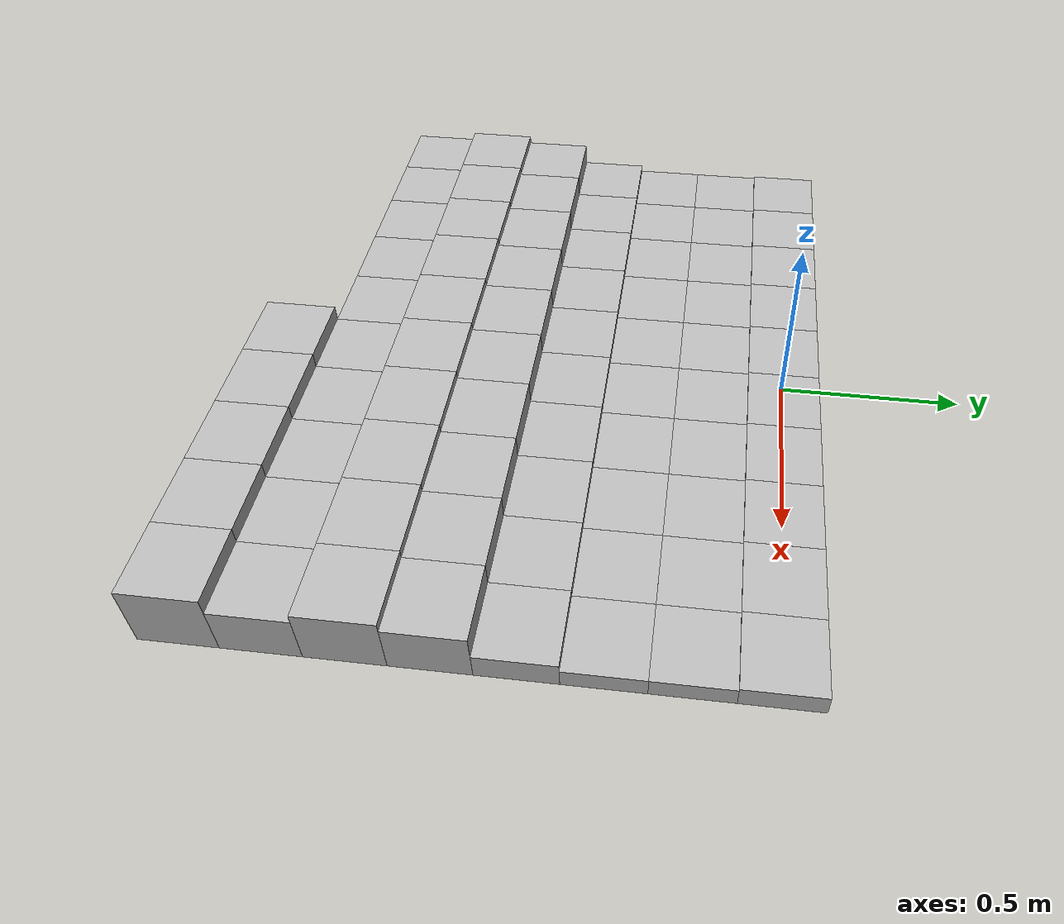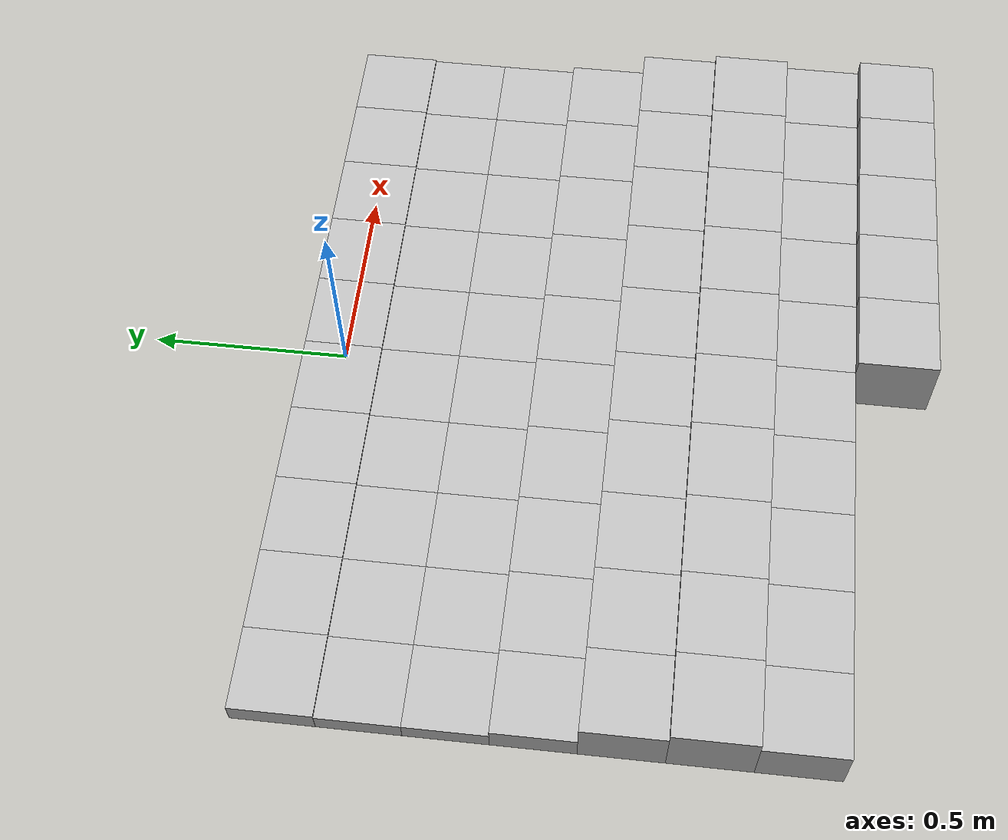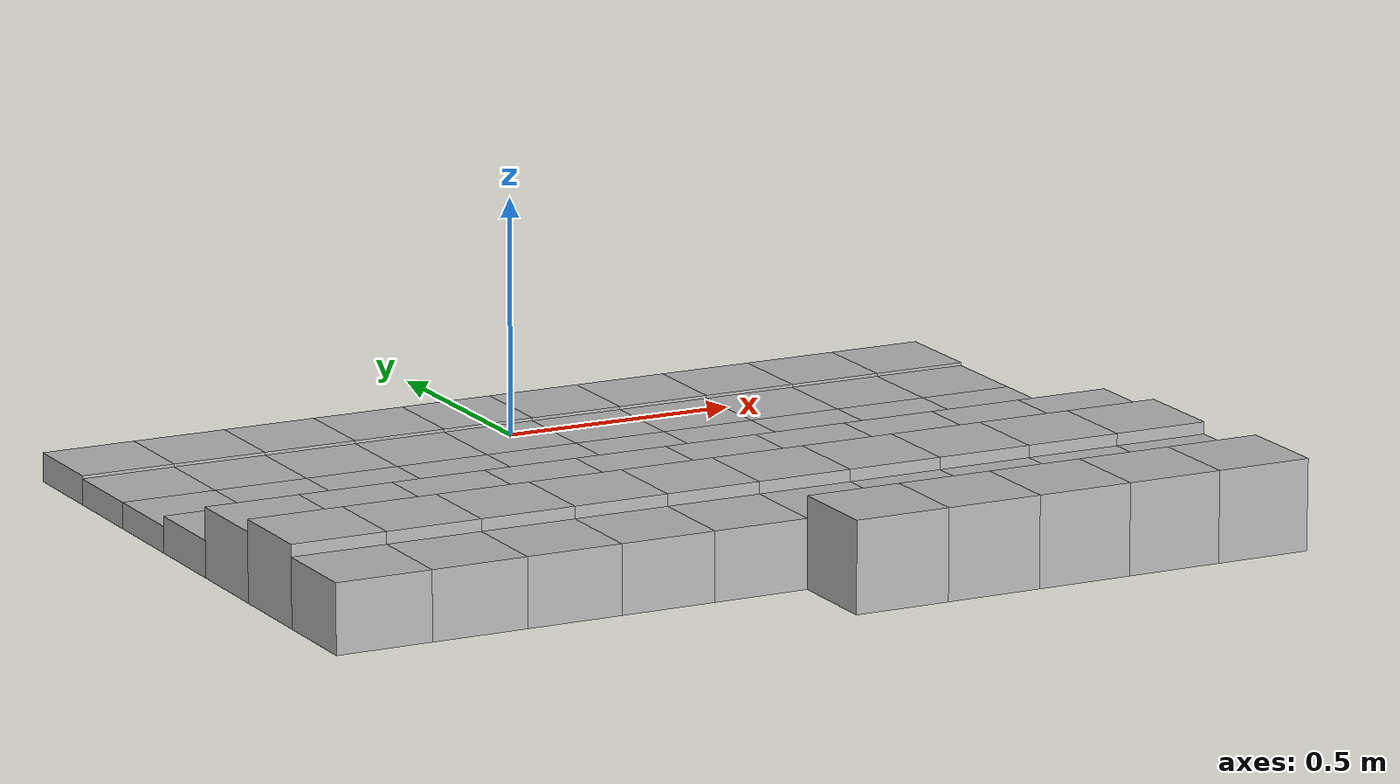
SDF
<sdf version="1.6">
 <model name="Terrain">
  <static>true</static>
  <link name="box_0_0">
   <pose>-0.9 0.0 0.0302745146225 0 0 0</pose>
   <inertial>
    <mass>1.0</mass>
    <inertia><ixx>0.0</ixx><ixy>0.0</ixy><ixz>0.0</ixz><iyy>0.0</iyy><iyz>0.0</iyz><izz>0.0</izz></inertia>
   </inertial>
   <collision name="collision"><geometry><box><size>0.2 0.2 0.060549029245</size></box></geometry></collision>
   <visual name="visual"><geometry><box><size>0.2 0.2 0.060549029245</size></box></geometry></visual>
  </link>
  <link name="box_0_1">
   <pose>-0.7 0.0 0.0302745146225 0 0 0</pose>
   <inertial>
    <mass>1.0</mass>
    <inertia><ixx>0.0</ixx><ixy>0.0</ixy><ixz>0.0</ixz><iyy>0.0</iyy><iyz>0.0</iyz><izz>0.0</izz></inertia>
   </inertial>
   <collision name="collision"><geometry><box><size>0.2 0.2 0.060549029245</size></box></geometry></collision>
   <visual name="visual"><geometry><box><size>0.2 0.2 0.060549029245</size></box></geometry></visual>
  </link>
  <link name="box_0_2">
   <pose>-0.5 0.0 0.0302745146225 0 0 0</pose>
   <inertial>
    <mass>1.0</mass>
    <inertia><ixx>0.0</ixx><ixy>0.0</ixy><ixz>0.0</ixz><iyy>0.0</iyy><iyz>0.0</iyz><izz>0.0</izz></inertia>
   </inertial>
   <collision name="collision"><geometry><box><size>0.2 0.2 0.060549029245</size></box></geometry></collision>
   <visual name="visual"><geometry><box><size>0.2 0.2 0.060549029245</size></box></geometry></visual>
  </link>
  <link name="box_0_3">
   <pose>-0.3 0.0 0.0302745146225 0 0 0</pose>
   <inertial>
    <mass>1.0</mass>
    <inertia><ixx>0.0</ixx><ixy>0.0</ixy><ixz>0.0</ixz><iyy>0.0</iyy><iyz>0.0</iyz><izz>0.0</izz></inertia>
   </inertial>
   <collision name="collision"><geometry><box><size>0.2 0.2 0.060549029245</size></box></geometry></collision>
   <visual name="visual"><geometry><box><size>0.2 0.2 0.060549029245</size></box></geometry></visual>
  </link>
  <link name="box_0_4">
   <pose>-0.1 0.0 0.0302745146225 0 0 0</pose>
   <inertial>
    <mass>1.0</mass>
    <inertia><ixx>0.0</ixx><ixy>0.0</ixy><ixz>0.0</ixz><iyy>0.0</iyy><iyz>0.0</iyz><izz>0.0</izz></inertia>
   </inertial>
   <collision name="collision"><geometry><box><size>0.2 0.2 0.060549029245</size></box></geometry></collision>
   <visual name="visual"><geometry><box><size>0.2 0.2 0.060549029245</size></box></geometry></visual>
  </link>
  <link name="box_0_5">
   <pose>0.1 0.0 0.0302745146225 0 0 0</pose>
   <inertial>
    <mass>1.0</mass>
    <inertia><ixx>0.0</ixx><ixy>0.0</ixy><ixz>0.0</ixz><iyy>0.0</iyy><iyz>0.0</iyz><izz>0.0</izz></inertia>
   </inertial>
   <collision name="collision"><geometry><box><size>0.2 0.2 0.060549029245</size></box></geometry></collision>
   <visual name="visual"><geometry><box><size>0.2 0.2 0.060549029245</size></box></geometry></visual>
  </link>
  <link name="box_0_6">
   <pose>0.3 0.0 0.0302745146225 0 0 0</pose>
   <inertial>
    <mass>1.0</mass>
    <inertia><ixx>0.0</ixx><ixy>0.0</ixy><ixz>0.0</ixz><iyy>0.0</iyy><iyz>0.0</iyz><izz>0.0</izz></inertia>
   </inertial>
   <collision name="collision"><geometry><box><size>0.2 0.2 0.060549029245</size></box></geometry></collision>
   <visual name="visual"><geometry><box><size>0.2 0.2 0.060549029245</size></box></geometry></visual>
  </link>
  <link name="box_0_7">
   <pose>0.5 0.0 0.0302745146225 0 0 0</pose>
   <inertial>
    <mass>1.0</mass>
    <inertia><ixx>0.0</ixx><ixy>0.0</ixy><ixz>0.0</ixz><iyy>0.0</iyy><iyz>0.0</iyz><izz>0.0</izz></inertia>
   </inertial>
   <collision name="collision"><geometry><box><size>0.2 0.2 0.060549029245</size></box></geometry></collision>
   <visual name="visual"><geometry><box><size>0.2 0.2 0.060549029245</size></box></geometry></visual>
  </link>
  <link name="box_0_8">
   <pose>0.7 0.0 0.0302745146225 0 0 0</pose>
   <inertial>
    <mass>1.0</mass>
    <inertia><ixx>0.0</ixx><ixy>0.0</ixy><ixz>0.0</ixz><iyy>0.0</iyy><iyz>0.0</iyz><izz>0.0</izz></inertia>
   </inertial>
   <collision name="collision"><geometry><box><size>0.2 0.2 0.060549029245</size></box></geometry></collision>
   <visual name="visual"><geometry><box><size>0.2 0.2 0.060549029245</size></box></geometry></visual>
  </link>
  <link name="box_0_9">
   <pose>0.9 0.0 0.0302745146225 0 0 0</pose>
   <inertial>
    <mass>1.0</mass>
    <inertia><ixx>0.0</ixx><ixy>0.0</ixy><ixz>0.0</ixz><iyy>0.0</iyy><iyz>0.0</iyz><izz>0.0</izz></inertia>
   </inertial>
   <collision name="collision"><geometry><box><size>0.2 0.2 0.060549029245</size></box></geometry></collision>
   <visual name="visual"><geometry><box><size>0.2 0.2 0.060549029245</size></box></geometry></visual>
  </link>
  <link name="box_1_0">
   <pose>-0.9 -0.2 0.0271384710734 0 0 0</pose>
   <inertial>
    <mass>1.0</mass>
    <inertia><ixx>0.0</ixx><ixy>0.0</ixy><ixz>0.0</ixz><iyy>0.0</iyy><iyz>0.0</iyz><izz>0.0</izz></inertia>
   </inertial>
   <collision name="collision"><geometry><box><size>0.2 0.2 0.0542769421468</size></box></geometry></collision>
   <visual name="visual"><geometry><box><size>0.2 0.2 0.0542769421468</size></box></geometry></visual>
  </link>
  <link name="box_1_1">
   <pose>-0.7 -0.2 0.0271384710734 0 0 0</pose>
   <inertial>
    <mass>1.0</mass>
    <inertia><ixx>0.0</ixx><ixy>0.0</ixy><ixz>0.0</ixz><iyy>0.0</iyy><iyz>0.0</iyz><izz>0.0</izz></inertia>
   </inertial>
   <collision name="collision"><geometry><box><size>0.2 0.2 0.0542769421468</size></box></geometry></collision>
   <visual name="visual"><geometry><box><size>0.2 0.2 0.0542769421468</size></box></geometry></visual>
  </link>
  <link name="box_1_2">
   <pose>-0.5 -0.2 0.0271384710734 0 0 0</pose>
   <inertial>
    <mass>1.0</mass>
    <inertia><ixx>0.0</ixx><ixy>0.0</ixy><ixz>0.0</ixz><iyy>0.0</iyy><iyz>0.0</iyz><izz>0.0</izz></inertia>
   </inertial>
   <collision name="collision"><geometry><box><size>0.2 0.2 0.0542769421468</size></box></geometry></collision>
   <visual name="visual"><geometry><box><size>0.2 0.2 0.0542769421468</size></box></geometry></visual>
  </link>
  <link name="box_1_3">
   <pose>-0.3 -0.2 0.0271384710734 0 0 0</pose>
   <inertial>
    <mass>1.0</mass>
    <inertia><ixx>0.0</ixx><ixy>0.0</ixy><ixz>0.0</ixz><iyy>0.0</iyy><iyz>0.0</iyz><izz>0.0</izz></inertia>
   </inertial>
   <collision name="collision"><geometry><box><size>0.2 0.2 0.0542769421468</size></box></geometry></collision>
   <visual name="visual"><geometry><box><size>0.2 0.2 0.0542769421468</size></box></geometry></visual>
  </link>
  <link name="box_1_4">
   <pose>-0.1 -0.2 0.0271384710734 0 0 0</pose>
   <inertial>
    <mass>1.0</mass>
    <inertia><ixx>0.0</ixx><ixy>0.0</ixy><ixz>0.0</ixz><iyy>0.0</iyy><iyz>0.0</iyz><izz>0.0</izz></inertia>
   </inertial>
   <collision name="collision"><geometry><box><size>0.2 0.2 0.0542769421468</size></box></geometry></collision>
   <visual name="visual"><geometry><box><size>0.2 0.2 0.0542769421468</size></box></geometry></visual>
  </link>
  <link name="box_1_5">
   <pose>0.1 -0.2 0.0271384710734 0 0 0</pose>
   <inertial>
    <mass>1.0</mass>
    <inertia><ixx>0.0</ixx><ixy>0.0</ixy><ixz>0.0</ixz><iyy>0.0</iyy><iyz>0.0</iyz><izz>0.0</izz></inertia>
   </inertial>
   <collision name="collision"><geometry><box><size>0.2 0.2 0.0542769421468</size></box></geometry></collision>
   <visual name="visual"><geometry><box><size>0.2 0.2 0.0542769421468</size></box></geometry></visual>
  </link>
  <link name="box_1_6">
   <pose>0.3 -0.2 0.0271384710734 0 0 0</pose>
   <inertial>
    <mass>1.0</mass>
    <inertia><ixx>0.0</ixx><ixy>0.0</ixy><ixz>0.0</ixz><iyy>0.0</iyy><iyz>0.0</iyz><izz>0.0</izz></inertia>
   </inertial>
   <collision name="collision"><geometry><box><size>0.2 0.2 0.0542769421468</size></box></geometry></collision>
   <visual name="visual"><geometry><box><size>0.2 0.2 0.0542769421468</size></box></geometry></visual>
  </link>
  <link name="box_1_7">
   <pose>0.5 -0.2 0.0271384710734 0 0 0</pose>
   <inertial>
    <mass>1.0</mass>
    <inertia><ixx>0.0</ixx><ixy>0.0</ixy><ixz>0.0</ixz><iyy>0.0</iyy><iyz>0.0</iyz><izz>0.0</izz></inertia>
   </inertial>
   <collision name="collision"><geometry><box><size>0.2 0.2 0.0542769421468</size></box></geometry></collision>
   <visual name="visual"><geometry><box><size>0.2 0.2 0.0542769421468</size></box></geometry></visual>
  </link>
  <link name="box_1_8">
   <pose>0.7 -0.2 0.0271384710734 0 0 0</pose>
   <inertial>
    <mass>1.0</mass>
    <inertia><ixx>0.0</ixx><ixy>0.0</ixy><ixz>0.0</ixz><iyy>0.0</iyy><iyz>0.0</iyz><izz>0.0</izz></inertia>
   </inertial>
   <collision name="collision"><geometry><box><size>0.2 0.2 0.0542769421468</size></box></geometry></collision>
   <visual name="visual"><geometry><box><size>0.2 0.2 0.0542769421468</size></box></geometry></visual>
  </link>
  <link name="box_1_9">
   <pose>0.9 -0.2 0.0271384710734 0 0 0</pose>
   <inertial>
    <mass>1.0</mass>
    <inertia><ixx>0.0</ixx><ixy>0.0</ixy><ixz>0.0</ixz><iyy>0.0</iyy><iyz>0.0</iyz><izz>0.0</izz></inertia>
   </inertial>
   <collision name="collision"><geometry><box><size>0.2 0.2 0.0542769421468</size></box></geometry></collision>
   <visual name="visual"><geometry><box><size>0.2 0.2 0.0542769421468</size></box></geometry></visual>
  </link>
  <link name="box_2_0">
   <pose>-0.9 -0.4 0.027221701947 0 0 0</pose>
   <inertial>
    <mass>1.0</mass>
    <inertia><ixx>0.0</ixx><ixy>0.0</ixy><ixz>0.0</ixz><iyy>0.0</iyy><iyz>0.0</iyz><izz>0.0</izz></inertia>
   </inertial>
   <collision name="collision"><geometry><box><size>0.2 0.2 0.0544434038941</size></box></geometry></collision>
   <visual name="visual"><geometry><box><size>0.2 0.2 0.0544434038941</size></box></geometry></visual>
  </link>
  <link name="box_2_1">
   <pose>-0.7 -0.4 0.027221701947 0 0 0</pose>
   <inertial>
    <mass>1.0</mass>
    <inertia><ixx>0.0</ixx><ixy>0.0</ixy><ixz>0.0</ixz><iyy>0.0</iyy><iyz>0.0</iyz><izz>0.0</izz></inertia>
   </inertial>
   <collision name="collision"><geometry><box><size>0.2 0.2 0.0544434038941</size></box></geometry></collision>
   <visual name="visual"><geometry><box><size>0.2 0.2 0.0544434038941</size></box></geometry></visual>
  </link>
  <link name="box_2_2">
   <pose>-0.5 -0.4 0.027221701947 0 0 0</pose>
   <inertial>
    <mass>1.0</mass>
    <inertia><ixx>0.0</ixx><ixy>0.0</ixy><ixz>0.0</ixz><iyy>0.0</iyy><iyz>0.0</iyz><izz>0.0</izz></inertia>
   </inertial>
   <collision name="collision"><geometry><box><size>0.2 0.2 0.0544434038941</size></box></geometry></collision>
   <visual name="visual"><geometry><box><size>0.2 0.2 0.0544434038941</size></box></geometry></visual>
  </link>
  <link name="box_2_3">
   <pose>-0.3 -0.4 0.027221701947 0 0 0</pose>
   <inertial>
    <mass>1.0</mass>
    <inertia><ixx>0.0</ixx><ixy>0.0</ixy><ixz>0.0</ixz><iyy>0.0</iyy><iyz>0.0</iyz><izz>0.0</izz></inertia>
   </inertial>
   <collision name="collision"><geometry><box><size>0.2 0.2 0.0544434038941</size></box></geometry></collision>
   <visual name="visual"><geometry><box><size>0.2 0.2 0.0544434038941</size></box></geometry></visual>
  </link>
  <link name="box_2_4">
   <pose>-0.1 -0.4 0.027221701947 0 0 0</pose>
   <inertial>
    <mass>1.0</mass>
    <inertia><ixx>0.0</ixx><ixy>0.0</ixy><ixz>0.0</ixz><iyy>0.0</iyy><iyz>0.0</iyz><izz>0.0</izz></inertia>
   </inertial>
   <collision name="collision"><geometry><box><size>0.2 0.2 0.0544434038941</size></box></geometry></collision>
   <visual name="visual"><geometry><box><size>0.2 0.2 0.0544434038941</size></box></geometry></visual>
  </link>
  <link name="box_2_5">
   <pose>0.1 -0.4 0.027221701947 0 0 0</pose>
   <inertial>
    <mass>1.0</mass>
    <inertia><ixx>0.0</ixx><ixy>0.0</ixy><ixz>0.0</ixz><iyy>0.0</iyy><iyz>0.0</iyz><izz>0.0</izz></inertia>
   </inertial>
   <collision name="collision"><geometry><box><size>0.2 0.2 0.0544434038941</size></box></geometry></collision>
   <visual name="visual"><geometry><box><size>0.2 0.2 0.0544434038941</size></box></geometry></visual>
  </link>
  <link name="box_2_6">
   <pose>0.3 -0.4 0.027221701947 0 0 0</pose>
   <inertial>
    <mass>1.0</mass>
    <inertia><ixx>0.0</ixx><ixy>0.0</ixy><ixz>0.0</ixz><iyy>0.0</iyy><iyz>0.0</iyz><izz>0.0</izz></inertia>
   </inertial>
   <collision name="collision"><geometry><box><size>0.2 0.2 0.0544434038941</size></box></geometry></collision>
   <visual name="visual"><geometry><box><size>0.2 0.2 0.0544434038941</size></box></geometry></visual>
  </link>
  <link name="box_2_7">
   <pose>0.5 -0.4 0.027221701947 0 0 0</pose>
   <inertial>
    <mass>1.0</mass>
    <inertia><ixx>0.0</ixx><ixy>0.0</ixy><ixz>0.0</ixz><iyy>0.0</iyy><iyz>0.0</iyz><izz>0.0</izz></inertia>
   </inertial>
   <collision name="collision"><geometry><box><size>0.2 0.2 0.0544434038941</size></box></geometry></collision>
   <visual name="visual"><geometry><box><size>0.2 0.2 0.0544434038941</size></box></geometry></visual>
  </link>
  <link name="box_2_8">
   <pose>0.7 -0.4 0.027221701947 0 0 0</pose>
   <inertial>
    <mass>1.0</mass>
    <inertia><ixx>0.0</ixx><ixy>0.0</ixy><ixz>0.0</ixz><iyy>0.0</iyy><iyz>0.0</iyz><izz>0.0</izz></inertia>
   </inertial>
   <collision name="collision"><geometry><box><size>0.2 0.2 0.0544434038941</size></box></geometry></collision>
   <visual name="visual"><geometry><box><size>0.2 0.2 0.0544434038941</size></box></geometry></visual>
  </link>
  <link name="box_2_9">
   <pose>0.9 -0.4 0.027221701947 0 0 0</pose>
   <inertial>
    <mass>1.0</mass>
    <inertia><ixx>0.0</ixx><ixy>0.0</ixy><ixz>0.0</ixz><iyy>0.0</iyy><iyz>0.0</iyz><izz>0.0</izz></inertia>
   </inertial>
   <collision name="collision"><geometry><box><size>0.2 0.2 0.0544434038941</size></box></geometry></collision>
   <visual name="visual"><geometry><box><size>0.2 0.2 0.0544434038941</size></box></geometry></visual>
  </link>
  <link name="box_3_0">
   <pose>-0.9 -0.6 0.0376582536334 0 0 0</pose>
   <inertial>
    <mass>1.0</mass>
    <inertia><ixx>0.0</ixx><ixy>0.0</ixy><ixz>0.0</ixz><iyy>0.0</iyy><iyz>0.0</iyz><izz>0.0</izz></inertia>
   </inertial>
   <collision name="collision"><geometry><box><size>0.2 0.2 0.0753165072667</size></box></geometry></collision>
   <visual name="visual"><geometry><box><size>0.2 0.2 0.0753165072667</size></box></geometry></visual>
  </link>
  <link name="box_3_1">
   <pose>-0.7 -0.6 0.0376582536334 0 0 0</pose>
   <inertial>
    <mass>1.0</mass>
    <inertia><ixx>0.0</ixx><ixy>0.0</ixy><ixz>0.0</ixz><iyy>0.0</iyy><iyz>0.0</iyz><izz>0.0</izz></inertia>
   </inertial>
   <collision name="collision"><geometry><box><size>0.2 0.2 0.0753165072667</size></box></geometry></collision>
   <visual name="visual"><geometry><box><size>0.2 0.2 0.0753165072667</size></box></geometry></visual>
  </link>
  <link name="box_3_2">
   <pose>-0.5 -0.6 0.0376582536334 0 0 0</pose>
   <inertial>
    <mass>1.0</mass>
    <inertia><ixx>0.0</ixx><ixy>0.0</ixy><ixz>0.0</ixz><iyy>0.0</iyy><iyz>0.0</iyz><izz>0.0</izz></inertia>
   </inertial>
   <collision name="collision"><geometry><box><size>0.2 0.2 0.0753165072667</size></box></geometry></collision>
   <visual name="visual"><geometry><box><size>0.2 0.2 0.0753165072667</size></box></geometry></visual>
  </link>
  <link name="box_3_3">
   <pose>-0.3 -0.6 0.0376582536334 0 0 0</pose>
   <inertial>
    <mass>1.0</mass>
    <inertia><ixx>0.0</ixx><ixy>0.0</ixy><ixz>0.0</ixz><iyy>0.0</iyy><iyz>0.0</iyz><izz>0.0</izz></inertia>
   </inertial>
   <collision name="collision"><geometry><box><size>0.2 0.2 0.0753165072667</size></box></geometry></collision>
   <visual name="visual"><geometry><box><size>0.2 0.2 0.0753165072667</size></box></geometry></visual>
  </link>
  <link name="box_3_4">
   <pose>-0.1 -0.6 0.0376582536334 0 0 0</pose>
   <inertial>
    <mass>1.0</mass>
    <inertia><ixx>0.0</ixx><ixy>0.0</ixy><ixz>0.0</ixz><iyy>0.0</iyy><iyz>0.0</iyz><izz>0.0</izz></inertia>
   </inertial>
   <collision name="collision"><geometry><box><size>0.2 0.2 0.0753165072667</size></box></geometry></collision>
   <visual name="visual"><geometry><box><size>0.2 0.2 0.0753165072667</size></box></geometry></visual>
  </link>
  <link name="box_3_5">
   <pose>0.1 -0.6 0.0376582536334 0 0 0</pose>
   <inertial>
    <mass>1.0</mass>
    <inertia><ixx>0.0</ixx><ixy>0.0</ixy><ixz>0.0</ixz><iyy>0.0</iyy><iyz>0.0</iyz><izz>0.0</izz></inertia>
   </inertial>
   <collision name="collision"><geometry><box><size>0.2 0.2 0.0753165072667</size></box></geometry></collision>
   <visual name="visual"><geometry><box><size>0.2 0.2 0.0753165072667</size></box></geometry></visual>
  </link>
  <link name="box_3_6">
   <pose>0.3 -0.6 0.0376582536334 0 0 0</pose>
   <inertial>
    <mass>1.0</mass>
    <inertia><ixx>0.0</ixx><ixy>0.0</ixy><ixz>0.0</ixz><iyy>0.0</iyy><iyz>0.0</iyz><izz>0.0</izz></inertia>
   </inertial>
   <collision name="collision"><geometry><box><size>0.2 0.2 0.0753165072667</size></box></geometry></collision>
   <visual name="visual"><geometry><box><size>0.2 0.2 0.0753165072667</size></box></geometry></visual>
  </link>
  <link name="box_3_7">
   <pose>0.5 -0.6 0.0376582536334 0 0 0</pose>
   <inertial>
    <mass>1.0</mass>
    <inertia><ixx>0.0</ixx><ixy>0.0</ixy><ixz>0.0</ixz><iyy>0.0</iyy><iyz>0.0</iyz><izz>0.0</izz></inertia>
   </inertial>
   <collision name="collision"><geometry><box><size>0.2 0.2 0.0753165072667</size></box></geometry></collision>
   <visual name="visual"><geometry><box><size>0.2 0.2 0.0753165072667</size></box></geometry></visual>
  </link>
  <link name="box_3_8">
   <pose>0.7 -0.6 0.0376582536334 0 0 0</pose>
   <inertial>
    <mass>1.0</mass>
    <inertia><ixx>0.0</ixx><ixy>0.0</ixy><ixz>0.0</ixz><iyy>0.0</iyy><iyz>0.0</iyz><izz>0.0</izz></inertia>
   </inertial>
   <collision name="collision"><geometry><box><size>0.2 0.2 0.0753165072667</size></box></geometry></collision>
   <visual name="visual"><geometry><box><size>0.2 0.2 0.0753165072667</size></box></geometry></visual>
  </link>
  <link name="box_3_9">
   <pose>0.9 -0.6 0.0376582536334 0 0 0</pose>
   <inertial>
    <mass>1.0</mass>
    <inertia><ixx>0.0</ixx><ixy>0.0</ixy><ixz>0.0</ixz><iyy>0.0</iyy><iyz>0.0</iyz><izz>0.0</izz></inertia>
   </inertial>
   <collision name="collision"><geometry><box><size>0.2 0.2 0.0753165072667</size></box></geometry></collision>
   <visual name="visual"><geometry><box><size>0.2 0.2 0.0753165072667</size></box></geometry></visual>
  </link>
  <link name="box_4_0">
   <pose>-0.9 -0.8 0.0713472331224 0 0 0</pose>
   <inertial>
    <mass>1.0</mass>
    <inertia><ixx>0.0</ixx><ixy>0.0</ixy><ixz>0.0</ixz><iyy>0.0</iyy><iyz>0.0</iyz><izz>0.0</izz></inertia>
   </inertial>
   <collision name="collision"><geometry><box><size>0.2 0.2 0.142694466245</size></box></geometry></collision>
   <visual name="visual"><geometry><box><size>0.2 0.2 0.142694466245</size></box></geometry></visual>
  </link>
  <link name="box_4_1">
   <pose>-0.7 -0.8 0.0713472331224 0 0 0</pose>
   <inertial>
    <mass>1.0</mass>
    <inertia><ixx>0.0</ixx><ixy>0.0</ixy><ixz>0.0</ixz><iyy>0.0</iyy><iyz>0.0</iyz><izz>0.0</izz></inertia>
   </inertial>
   <collision name="collision"><geometry><box><size>0.2 0.2 0.142694466245</size></box></geometry></collision>
   <visual name="visual"><geometry><box><size>0.2 0.2 0.142694466245</size></box></geometry></visual>
  </link>
  <link name="box_4_2">
   <pose>-0.5 -0.8 0.0713472331224 0 0 0</pose>
   <inertial>
    <mass>1.0</mass>
    <inertia><ixx>0.0</ixx><ixy>0.0</ixy><ixz>0.0</ixz><iyy>0.0</iyy><iyz>0.0</iyz><izz>0.0</izz></inertia>
   </inertial>
   <collision name="collision"><geometry><box><size>0.2 0.2 0.142694466245</size></box></geometry></collision>
   <visual name="visual"><geometry><box><size>0.2 0.2 0.142694466245</size></box></geometry></visual>
  </link>
  <link name="box_4_3">
   <pose>-0.3 -0.8 0.0713472331224 0 0 0</pose>
   <inertial>
    <mass>1.0</mass>
    <inertia><ixx>0.0</ixx><ixy>0.0</ixy><ixz>0.0</ixz><iyy>0.0</iyy><iyz>0.0</iyz><izz>0.0</izz></inertia>
   </inertial>
   <collision name="collision"><geometry><box><size>0.2 0.2 0.142694466245</size></box></geometry></collision>
   <visual name="visual"><geometry><box><size>0.2 0.2 0.142694466245</size></box></geometry></visual>
  </link>
  <link name="box_4_4">
   <pose>-0.1 -0.8 0.0713472331224 0 0 0</pose>
   <inertial>
    <mass>1.0</mass>
    <inertia><ixx>0.0</ixx><ixy>0.0</ixy><ixz>0.0</ixz><iyy>0.0</iyy><iyz>0.0</iyz><izz>0.0</izz></inertia>
   </inertial>
   <collision name="collision"><geometry><box><size>0.2 0.2 0.142694466245</size></box></geometry></collision>
   <visual name="visual"><geometry><box><size>0.2 0.2 0.142694466245</size></box></geometry></visual>
  </link>
  <link name="box_4_5">
   <pose>0.1 -0.8 0.0713472331224 0 0 0</pose>
   <inertial>
    <mass>1.0</mass>
    <inertia><ixx>0.0</ixx><ixy>0.0</ixy><ixz>0.0</ixz><iyy>0.0</iyy><iyz>0.0</iyz><izz>0.0</izz></inertia>
   </inertial>
   <collision name="collision"><geometry><box><size>0.2 0.2 0.142694466245</size></box></geometry></collision>
   <visual name="visual"><geometry><box><size>0.2 0.2 0.142694466245</size></box></geometry></visual>
  </link>
  <link name="box_4_6">
   <pose>0.3 -0.8 0.0713472331224 0 0 0</pose>
   <inertial>
    <mass>1.0</mass>
    <inertia><ixx>0.0</ixx><ixy>0.0</ixy><ixz>0.0</ixz><iyy>0.0</iyy><iyz>0.0</iyz><izz>0.0</izz></inertia>
   </inertial>
   <collision name="collision"><geometry><box><size>0.2 0.2 0.142694466245</size></box></geometry></collision>
   <visual name="visual"><geometry><box><size>0.2 0.2 0.142694466245</size></box></geometry></visual>
  </link>
  <link name="box_4_7">
   <pose>0.5 -0.8 0.0713472331224 0 0 0</pose>
   <inertial>
    <mass>1.0</mass>
    <inertia><ixx>0.0</ixx><ixy>0.0</ixy><ixz>0.0</ixz><iyy>0.0</iyy><iyz>0.0</iyz><izz>0.0</izz></inertia>
   </inertial>
   <collision name="collision"><geometry><box><size>0.2 0.2 0.142694466245</size></box></geometry></collision>
   <visual name="visual"><geometry><box><size>0.2 0.2 0.142694466245</size></box></geometry></visual>
  </link>
  <link name="box_4_8">
   <pose>0.7 -0.8 0.0713472331224 0 0 0</pose>
   <inertial>
    <mass>1.0</mass>
    <inertia><ixx>0.0</ixx><ixy>0.0</ixy><ixz>0.0</ixz><iyy>0.0</iyy><iyz>0.0</iyz><izz>0.0</izz></inertia>
   </inertial>
   <collision name="collision"><geometry><box><size>0.2 0.2 0.142694466245</size></box></geometry></collision>
   <visual name="visual"><geometry><box><size>0.2 0.2 0.142694466245</size></box></geometry></visual>
  </link>
  <link name="box_4_9">
   <pose>0.9 -0.8 0.0713472331224 0 0 0</pose>
   <inertial>
    <mass>1.0</mass>
    <inertia><ixx>0.0</ixx><ixy>0.0</ixy><ixz>0.0</ixz><iyy>0.0</iyy><iyz>0.0</iyz><izz>0.0</izz></inertia>
   </inertial>
   <collision name="collision"><geometry><box><size>0.2 0.2 0.142694466245</size></box></geometry></collision>
   <visual name="visual"><geometry><box><size>0.2 0.2 0.142694466245</size></box></geometry></visual>
  </link>
  <link name="box_5_0">
   <pose>-0.9 -1.0 0.0835673570583 0 0 0</pose>
   <inertial>
    <mass>1.0</mass>
    <inertia><ixx>0.0</ixx><ixy>0.0</ixy><ixz>0.0</ixz><iyy>0.0</iyy><iyz>0.0</iyz><izz>0.0</izz></inertia>
   </inertial>
   <collision name="collision"><geometry><box><size>0.2 0.2 0.167134714117</size></box></geometry></collision>
   <visual name="visual"><geometry><box><size>0.2 0.2 0.167134714117</size></box></geometry></visual>
  </link>
  <link name="box_5_1">
   <pose>-0.7 -1.0 0.0835673570583 0 0 0</pose>
   <inertial>
    <mass>1.0</mass>
    <inertia><ixx>0.0</ixx><ixy>0.0</ixy><ixz>0.0</ixz><iyy>0.0</iyy><iyz>0.0</iyz><izz>0.0</izz></inertia>
   </inertial>
   <collision name="collision"><geometry><box><size>0.2 0.2 0.167134714117</size></box></geometry></collision>
   <visual name="visual"><geometry><box><size>0.2 0.2 0.167134714117</size></box></geometry></visual>
  </link>
  <link name="box_5_2">
   <pose>-0.5 -1.0 0.0835673570583 0 0 0</pose>
   <inertial>
    <mass>1.0</mass>
    <inertia><ixx>0.0</ixx><ixy>0.0</ixy><ixz>0.0</ixz><iyy>0.0</iyy><iyz>0.0</iyz><izz>0.0</izz></inertia>
   </inertial>
   <collision name="collision"><geometry><box><size>0.2 0.2 0.167134714117</size></box></geometry></collision>
   <visual name="visual"><geometry><box><size>0.2 0.2 0.167134714117</size></box></geometry></visual>
  </link>
  <link name="box_5_3">
   <pose>-0.3 -1.0 0.0835673570583 0 0 0</pose>
   <inertial>
    <mass>1.0</mass>
    <inertia><ixx>0.0</ixx><ixy>0.0</ixy><ixz>0.0</ixz><iyy>0.0</iyy><iyz>0.0</iyz><izz>0.0</izz></inertia>
   </inertial>
   <collision name="collision"><geometry><box><size>0.2 0.2 0.167134714117</size></box></geometry></collision>
   <visual name="visual"><geometry><box><size>0.2 0.2 0.167134714117</size></box></geometry></visual>
  </link>
  <link name="box_5_4">
   <pose>-0.1 -1.0 0.0835673570583 0 0 0</pose>
   <inertial>
    <mass>1.0</mass>
    <inertia><ixx>0.0</ixx><ixy>0.0</ixy><ixz>0.0</ixz><iyy>0.0</iyy><iyz>0.0</iyz><izz>0.0</izz></inertia>
   </inertial>
   <collision name="collision"><geometry><box><size>0.2 0.2 0.167134714117</size></box></geometry></collision>
   <visual name="visual"><geometry><box><size>0.2 0.2 0.167134714117</size></box></geometry></visual>
  </link>
  <link name="box_5_5">
   <pose>0.1 -1.0 0.0835673570583 0 0 0</pose>
   <inertial>
    <mass>1.0</mass>
    <inertia><ixx>0.0</ixx><ixy>0.0</ixy><ixz>0.0</ixz><iyy>0.0</iyy><iyz>0.0</iyz><izz>0.0</izz></inertia>
   </inertial>
   <collision name="collision"><geometry><box><size>0.2 0.2 0.167134714117</size></box></geometry></collision>
   <visual name="visual"><geometry><box><size>0.2 0.2 0.167134714117</size></box></geometry></visual>
  </link>
  <link name="box_5_6">
   <pose>0.3 -1.0 0.0835673570583 0 0 0</pose>
   <inertial>
    <mass>1.0</mass>
    <inertia><ixx>0.0</ixx><ixy>0.0</ixy><ixz>0.0</ixz><iyy>0.0</iyy><iyz>0.0</iyz><izz>0.0</izz></inertia>
   </inertial>
   <collision name="collision"><geometry><box><size>0.2 0.2 0.167134714117</size></box></geometry></collision>
   <visual name="visual"><geometry><box><size>0.2 0.2 0.167134714117</size></box></geometry></visual>
  </link>
  <link name="box_5_7">
   <pose>0.5 -1.0 0.0835673570583 0 0 0</pose>
   <inertial>
    <mass>1.0</mass>
    <inertia><ixx>0.0</ixx><ixy>0.0</ixy><ixz>0.0</ixz><iyy>0.0</iyy><iyz>0.0</iyz><izz>0.0</izz></inertia>
   </inertial>
   <collision name="collision"><geometry><box><size>0.2 0.2 0.167134714117</size></box></geometry></collision>
   <visual name="visual"><geometry><box><size>0.2 0.2 0.167134714117</size></box></geometry></visual>
  </link>
  <link name="box_5_8">
   <pose>0.7 -1.0 0.0835673570583 0 0 0</pose>
   <inertial>
    <mass>1.0</mass>
    <inertia><ixx>0.0</ixx><ixy>0.0</ixy><ixz>0.0</ixz><iyy>0.0</iyy><iyz>0.0</iyz><izz>0.0</izz></inertia>
   </inertial>
   <collision name="collision"><geometry><box><size>0.2 0.2 0.167134714117</size></box></geometry></collision>
   <visual name="visual"><geometry><box><size>0.2 0.2 0.167134714117</size></box></geometry></visual>
  </link>
  <link name="box_5_9">
   <pose>0.9 -1.0 0.0835673570583 0 0 0</pose>
   <inertial>
    <mass>1.0</mass>
    <inertia><ixx>0.0</ixx><ixy>0.0</ixy><ixz>0.0</ixz><iyy>0.0</iyy><iyz>0.0</iyz><izz>0.0</izz></inertia>
   </inertial>
   <collision name="collision"><geometry><box><size>0.2 0.2 0.167134714117</size></box></geometry></collision>
   <visual name="visual"><geometry><box><size>0.2 0.2 0.167134714117</size></box></geometry></visual>
  </link>
  <link name="box_6_0">
   <pose>-0.9 -1.2 0.0709959346264 0 0 0</pose>
   <inertial>
    <mass>1.0</mass>
    <inertia><ixx>0.0</ixx><ixy>0.0</ixy><ixz>0.0</ixz><iyy>0.0</iyy><iyz>0.0</iyz><izz>0.0</izz></inertia>
   </inertial>
   <collision name="collision"><geometry><box><size>0.2 0.2 0.141991869253</size></box></geometry></collision>
   <visual name="visual"><geometry><box><size>0.2 0.2 0.141991869253</size></box></geometry></visual>
  </link>
  <link name="box_6_1">
   <pose>-0.7 -1.2 0.0709959346264 0 0 0</pose>
   <inertial>
    <mass>1.0</mass>
    <inertia><ixx>0.0</ixx><ixy>0.0</ixy><ixz>0.0</ixz><iyy>0.0</iyy><iyz>0.0</iyz><izz>0.0</izz></inertia>
   </inertial>
   <collision name="collision"><geometry><box><size>0.2 0.2 0.141991869253</size></box></geometry></collision>
   <visual name="visual"><geometry><box><size>0.2 0.2 0.141991869253</size></box></geometry></visual>
  </link>
  <link name="box_6_2">
   <pose>-0.5 -1.2 0.0709959346264 0 0 0</pose>
   <inertial>
    <mass>1.0</mass>
    <inertia><ixx>0.0</ixx><ixy>0.0</ixy><ixz>0.0</ixz><iyy>0.0</iyy><iyz>0.0</iyz><izz>0.0</izz></inertia>
   </inertial>
   <collision name="collision"><geometry><box><size>0.2 0.2 0.141991869253</size></box></geometry></collision>
   <visual name="visual"><geometry><box><size>0.2 0.2 0.141991869253</size></box></geometry></visual>
  </link>
  <link name="box_6_3">
   <pose>-0.3 -1.2 0.0709959346264 0 0 0</pose>
   <inertial>
    <mass>1.0</mass>
    <inertia><ixx>0.0</ixx><ixy>0.0</ixy><ixz>0.0</ixz><iyy>0.0</iyy><iyz>0.0</iyz><izz>0.0</izz></inertia>
   </inertial>
   <collision name="collision"><geometry><box><size>0.2 0.2 0.141991869253</size></box></geometry></collision>
   <visual name="visual"><geometry><box><size>0.2 0.2 0.141991869253</size></box></geometry></visual>
  </link>
  <link name="box_6_4">
   <pose>-0.1 -1.2 0.0709959346264 0 0 0</pose>
   <inertial>
    <mass>1.0</mass>
    <inertia><ixx>0.0</ixx><ixy>0.0</ixy><ixz>0.0</ixz><iyy>0.0</iyy><iyz>0.0</iyz><izz>0.0</izz></inertia>
   </inertial>
   <collision name="collision"><geometry><box><size>0.2 0.2 0.141991869253</size></box></geometry></collision>
   <visual name="visual"><geometry><box><size>0.2 0.2 0.141991869253</size></box></geometry></visual>
  </link>
  <link name="box_6_5">
   <pose>0.1 -1.2 0.0709959346264 0 0 0</pose>
   <inertial>
    <mass>1.0</mass>
    <inertia><ixx>0.0</ixx><ixy>0.0</ixy><ixz>0.0</ixz><iyy>0.0</iyy><iyz>0.0</iyz><izz>0.0</izz></inertia>
   </inertial>
   <collision name="collision"><geometry><box><size>0.2 0.2 0.141991869253</size></box></geometry></collision>
   <visual name="visual"><geometry><box><size>0.2 0.2 0.141991869253</size></box></geometry></visual>
  </link>
  <link name="box_6_6">
   <pose>0.3 -1.2 0.0709959346264 0 0 0</pose>
   <inertial>
    <mass>1.0</mass>
    <inertia><ixx>0.0</ixx><ixy>0.0</ixy><ixz>0.0</ixz><iyy>0.0</iyy><iyz>0.0</iyz><izz>0.0</izz></inertia>
   </inertial>
   <collision name="collision"><geometry><box><size>0.2 0.2 0.141991869253</size></box></geometry></collision>
   <visual name="visual"><geometry><box><size>0.2 0.2 0.141991869253</size></box></geometry></visual>
  </link>
  <link name="box_6_7">
   <pose>0.5 -1.2 0.0709959346264 0 0 0</pose>
   <inertial>
    <mass>1.0</mass>
    <inertia><ixx>0.0</ixx><ixy>0.0</ixy><ixz>0.0</ixz><iyy>0.0</iyy><iyz>0.0</iyz><izz>0.0</izz></inertia>
   </inertial>
   <collision name="collision"><geometry><box><size>0.2 0.2 0.141991869253</size></box></geometry></collision>
   <visual name="visual"><geometry><box><size>0.2 0.2 0.141991869253</size></box></geometry></visual>
  </link>
  <link name="box_6_8">
   <pose>0.7 -1.2 0.0709959346264 0 0 0</pose>
   <inertial>
    <mass>1.0</mass>
    <inertia><ixx>0.0</ixx><ixy>0.0</ixy><ixz>0.0</ixz><iyy>0.0</iyy><iyz>0.0</iyz><izz>0.0</izz></inertia>
   </inertial>
   <collision name="collision"><geometry><box><size>0.2 0.2 0.141991869253</size></box></geometry></collision>
   <visual name="visual"><geometry><box><size>0.2 0.2 0.141991869253</size></box></geometry></visual>
  </link>
  <link name="box_6_9">
   <pose>0.9 -1.2 0.0709959346264 0 0 0</pose>
   <inertial>
    <mass>1.0</mass>
    <inertia><ixx>0.0</ixx><ixy>0.0</ixy><ixz>0.0</ixz><iyy>0.0</iyy><iyz>0.0</iyz><izz>0.0</izz></inertia>
   </inertial>
   <collision name="collision"><geometry><box><size>0.2 0.2 0.141991869253</size></box></geometry></collision>
   <visual name="visual"><geometry><box><size>0.2 0.2 0.141991869253</size></box></geometry></visual>
  </link>
  <link name="box_7_5">
   <pose>0.1 -1.4 0.0936538717073 0 0 0</pose>
   <inertial>
    <mass>1.0</mass>
    <inertia><ixx>0.0</ixx><ixy>0.0</ixy><ixz>0.0</ixz><iyy>0.0</iyy><iyz>0.0</iyz><izz>0.0</izz></inertia>
   </inertial>
   <collision name="collision"><geometry><box><size>0.2 0.2 0.187307743415</size></box></geometry></collision>
   <visual name="visual"><geometry><box><size>0.2 0.2 0.187307743415</size></box></geometry></visual>
  </link>
  <link name="box_7_6">
   <pose>0.3 -1.4 0.0936538717073 0 0 0</pose>
   <inertial>
    <mass>1.0</mass>
    <inertia><ixx>0.0</ixx><ixy>0.0</ixy><ixz>0.0</ixz><iyy>0.0</iyy><iyz>0.0</iyz><izz>0.0</izz></inertia>
   </inertial>
   <collision name="collision"><geometry><box><size>0.2 0.2 0.187307743415</size></box></geometry></collision>
   <visual name="visual"><geometry><box><size>0.2 0.2 0.187307743415</size></box></geometry></visual>
  </link>
  <link name="box_7_7">
   <pose>0.5 -1.4 0.0936538717073 0 0 0</pose>
   <inertial>
    <mass>1.0</mass>
    <inertia><ixx>0.0</ixx><ixy>0.0</ixy><ixz>0.0</ixz><iyy>0.0</iyy><iyz>0.0</iyz><izz>0.0</izz></inertia>
   </inertial>
   <collision name="collision"><geometry><box><size>0.2 0.2 0.187307743415</size></box></geometry></collision>
   <visual name="visual"><geometry><box><size>0.2 0.2 0.187307743415</size></box></geometry></visual>
  </link>
  <link name="box_7_8">
   <pose>0.7 -1.4 0.0936538717073 0 0 0</pose>
   <inertial>
    <mass>1.0</mass>
    <inertia><ixx>0.0</ixx><ixy>0.0</ixy><ixz>0.0</ixz><iyy>0.0</iyy><iyz>0.0</iyz><izz>0.0</izz></inertia>
   </inertial>
   <collision name="collision"><geometry><box><size>0.2 0.2 0.187307743415</size></box></geometry></collision>
   <visual name="visual"><geometry><box><size>0.2 0.2 0.187307743415</size></box></geometry></visual>
  </link>
  <link name="box_7_9">
   <pose>0.9 -1.4 0.0936538717073 0 0 0</pose>
   <inertial>
    <mass>1.0</mass>
    <inertia><ixx>0.0</ixx><ixy>0.0</ixy><ixz>0.0</ixz><iyy>0.0</iyy><iyz>0.0</iyz><izz>0.0</izz></inertia>
   </inertial>
   <collision name="collision"><geometry><box><size>0.2 0.2 0.187307743415</size></box></geometry></collision>
   <visual name="visual"><geometry><box><size>0.2 0.2 0.187307743415</size></box></geometry></visual>
  </link>
 </model>
</sdf>
